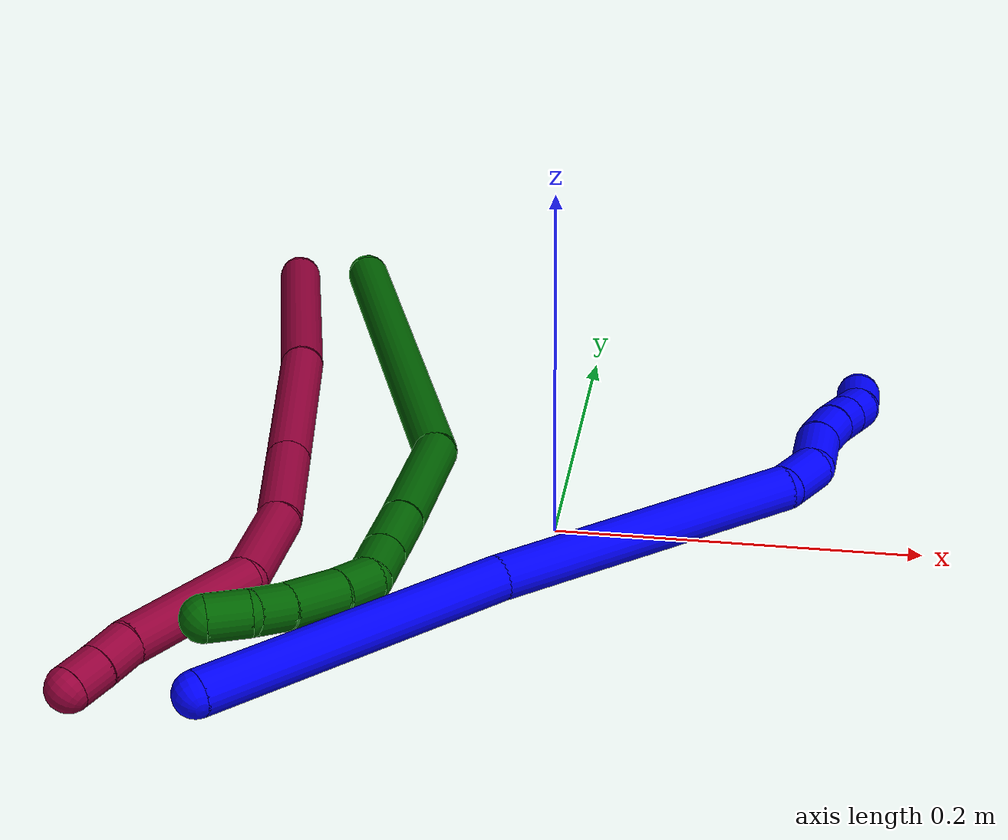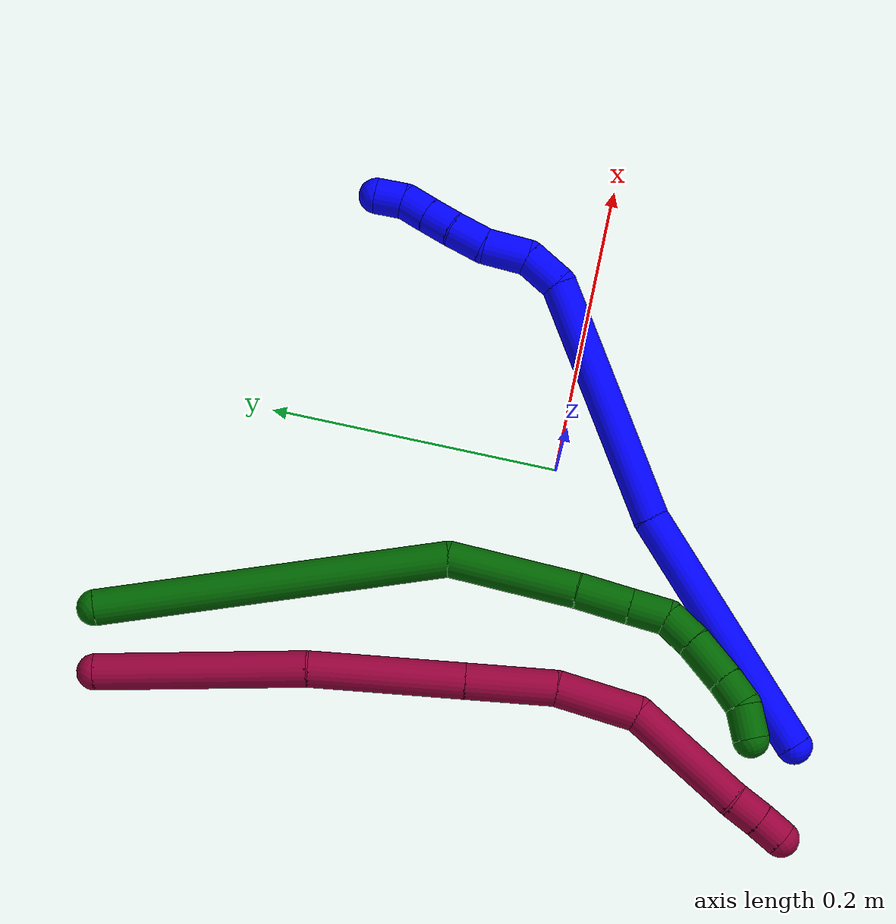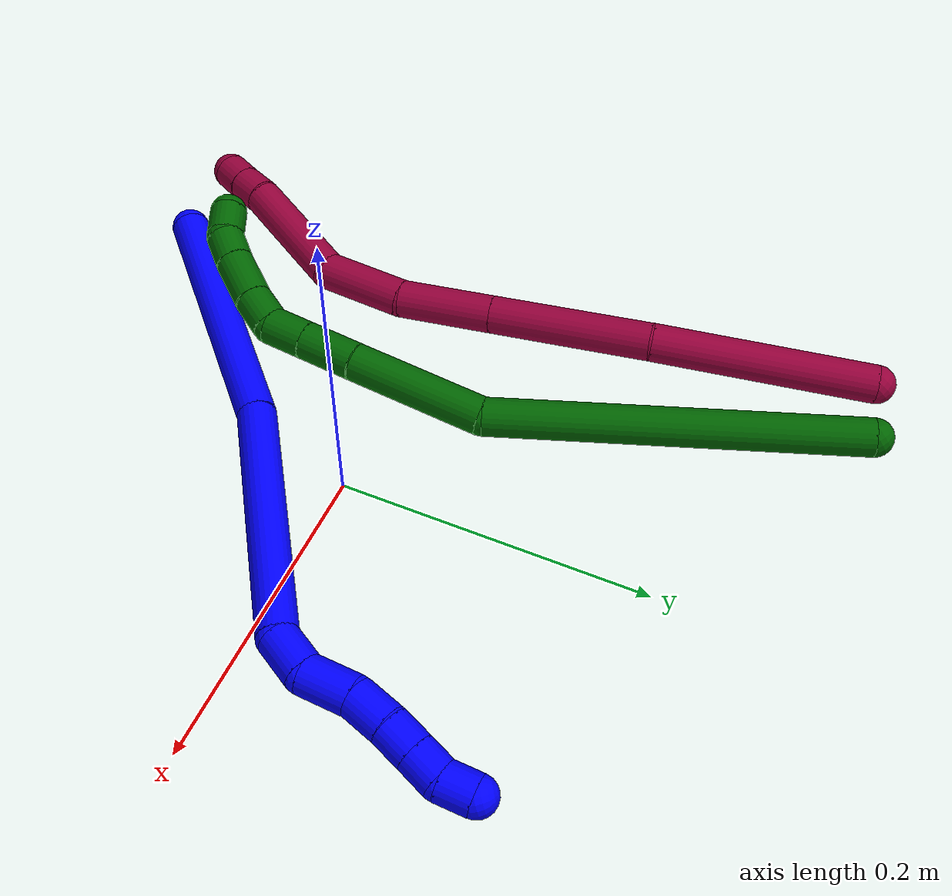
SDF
<sdf version="1.7">
 <world name="default">
  <model name="1">
   <static>0</static>
   <link name="1">
    <collision name="collision-cylinder-e_1_1_4">
     <pose>0.064473 0.060975 0.019854 -1.25601 0.788096 -0.586387</pose>
     <geometry><cylinder><radius>0.0125</radius><length>0.181867</length></cylinder></geometry>
     <surface>
      <friction><ode><mu>1.16</mu><mu2>1.16</mu2><slip1>0</slip1><slip2>0</slip2></ode></friction>
      <contact><ode><kp>1e+06</kp><kd>1</kd><max_vel>0</max_vel><min_depth>0.001</min_depth></ode></contact>
     </surface>
    </collision>
    <visual name="visual-cylinder-e_1_1_4">
     <pose>0.064473 0.060975 0.019854 -1.25601 0.788096 -0.586387</pose>
     <geometry><cylinder><radius>0.0125</radius><length>0.181867</length></cylinder></geometry>
     <material><ambient>0 0 1 1</ambient></material>
    </visual>
    <collision name="collision-cylinder-e_2_4_5">
     <pose>0.197436 0.174737 0.044534 -1.47963 0.91215 -0.841994</pose>
     <geometry><cylinder><radius>0.0125</radius><length>0.173214</length></cylinder></geometry>
     <surface>
      <friction><ode><mu>1.16</mu><mu2>1.16</mu2><slip1>0</slip1><slip2>0</slip2></ode></friction>
      <contact><ode><kp>1e+06</kp><kd>1</kd><max_vel>0</max_vel><min_depth>0.001</min_depth></ode></contact>
     </surface>
    </collision>
    <visual name="visual-cylinder-e_2_4_5">
     <pose>0.197436 0.174737 0.044534 -1.47963 0.91215 -0.841994</pose>
     <geometry><cylinder><radius>0.0125</radius><length>0.173214</length></cylinder></geometry>
     <material><ambient>0 0 1 1</ambient></material>
    </visual>
    <collision name="collision-cylinder-e_3_5_6">
     <pose>0.274226 0.236633 0.056025 -0.939054 0.634003 -0.329877</pose>
     <geometry><cylinder><radius>0.0125</radius><length>0.02802</length></cylinder></geometry>
     <surface>
      <friction><ode><mu>1.16</mu><mu2>1.16</mu2><slip1>0</slip1><slip2>0</slip2></ode></friction>
      <contact><ode><kp>1e+06</kp><kd>1</kd><max_vel>0</max_vel><min_depth>0.001</min_depth></ode></contact>
     </surface>
    </collision>
    <visual name="visual-cylinder-e_3_5_6">
     <pose>0.274226 0.236633 0.056025 -0.939054 0.634003 -0.329877</pose>
     <geometry><cylinder><radius>0.0125</radius><length>0.02802</length></cylinder></geometry>
     <material><ambient>0 0 1 1</ambient></material>
    </visual>
    <collision name="collision-cylinder-e_4_6_7">
     <pose>0.287438 0.253365 0.075383 -0.540887 0.320422 -0.08954</pose>
     <geometry><cylinder><radius>0.0125</radius><length>0.031199</length></cylinder></geometry>
     <surface>
      <friction><ode><mu>1.16</mu><mu2>1.16</mu2><slip1>0</slip1><slip2>0</slip2></ode></friction>
      <contact><ode><kp>1e+06</kp><kd>1</kd><max_vel>0</max_vel><min_depth>0.001</min_depth></ode></contact>
     </surface>
    </collision>
    <visual name="visual-cylinder-e_4_6_7">
     <pose>0.287438 0.253365 0.075383 -0.540887 0.320422 -0.08954</pose>
     <geometry><cylinder><radius>0.0125</radius><length>0.031199</length></cylinder></geometry>
     <material><ambient>0 0 1 1</ambient></material>
    </visual>
    <collision name="collision-cylinder-e_5_7_8">
     <pose>0.297563 0.268978 0.095919 -0.794563 0.435598 -0.185189</pose>
     <geometry><cylinder><radius>0.0125</radius><length>0.0247</length></cylinder></geometry>
     <surface>
      <friction><ode><mu>1.16</mu><mu2>1.16</mu2><slip1>0</slip1><slip2>0</slip2></ode></friction>
      <contact><ode><kp>1e+06</kp><kd>1</kd><max_vel>0</max_vel><min_depth>0.001</min_depth></ode></contact>
     </surface>
    </collision>
    <visual name="visual-cylinder-e_5_7_8">
     <pose>0.297563 0.268978 0.095919 -0.794563 0.435598 -0.185189</pose>
     <geometry><cylinder><radius>0.0125</radius><length>0.0247</length></cylinder></geometry>
     <material><ambient>0 0 1 1</ambient></material>
    </visual>
    <collision name="collision-cylinder-e_6_8_9">
     <pose>0.306645 0.284376 0.10953 -0.909426 0.391168 -0.193109</pose>
     <geometry><cylinder><radius>0.0125</radius><length>0.020309</length></cylinder></geometry>
     <surface>
      <friction><ode><mu>1.16</mu><mu2>1.16</mu2><slip1>0</slip1><slip2>0</slip2></ode></friction>
      <contact><ode><kp>1e+06</kp><kd>1</kd><max_vel>0</max_vel><min_depth>0.001</min_depth></ode></contact>
     </surface>
    </collision>
    <visual name="visual-cylinder-e_6_8_9">
     <pose>0.306645 0.284376 0.10953 -0.909426 0.391168 -0.193109</pose>
     <geometry><cylinder><radius>0.0125</radius><length>0.020309</length></cylinder></geometry>
     <material><ambient>0 0 1 1</ambient></material>
    </visual>
    <collision name="collision-cylinder-e_7_9_10">
     <pose>0.314573 0.299069 0.120898 -0.915164 0.415627 -0.206928</pose>
     <geometry><cylinder><radius>0.0125</radius><length>0.020091</length></cylinder></geometry>
     <surface>
      <friction><ode><mu>1.16</mu><mu2>1.16</mu2><slip1>0</slip1><slip2>0</slip2></ode></friction>
      <contact><ode><kp>1e+06</kp><kd>1</kd><max_vel>0</max_vel><min_depth>0.001</min_depth></ode></contact>
     </surface>
    </collision>
    <visual name="visual-cylinder-e_7_9_10">
     <pose>0.314573 0.299069 0.120898 -0.915164 0.415627 -0.206928</pose>
     <geometry><cylinder><radius>0.0125</radius><length>0.020091</length></cylinder></geometry>
     <material><ambient>0 0 1 1</ambient></material>
    </visual>
    <collision name="collision-cylinder-e_8_10_2">
     <pose>0.320958 0.311724 0.134977 -0.564794 0.228113 -0.066451</pose>
     <geometry><cylinder><radius>0.0125</radius><length>0.020601</length></cylinder></geometry>
     <surface>
      <friction><ode><mu>1.16</mu><mu2>1.16</mu2><slip1>0</slip1><slip2>0</slip2></ode></friction>
      <contact><ode><kp>1e+06</kp><kd>1</kd><max_vel>0</max_vel><min_depth>0.001</min_depth></ode></contact>
     </surface>
    </collision>
    <visual name="visual-cylinder-e_8_10_2">
     <pose>0.320958 0.311724 0.134977 -0.564794 0.228113 -0.066451</pose>
     <geometry><cylinder><radius>0.0125</radius><length>0.020601</length></cylinder></geometry>
     <material><ambient>0 0 1 1</ambient></material>
    </visual>
    <collision name="collision-sphere-2">
     <pose>0.323288 0.317094 0.143452 0 -0 0</pose>
     <geometry><sphere><radius>0.0125</radius></sphere></geometry>
     <surface>
      <friction><ode><mu>1.16</mu><mu2>1.16</mu2><slip1>0</slip1><slip2>0</slip2></ode></friction>
      <contact><ode><kp>1e+06</kp><kd>1</kd><max_vel>0</max_vel><min_depth>0.001</min_depth></ode></contact>
     </surface>
    </collision>
    <visual name="visual-sphere-2">
     <pose>0.323288 0.317094 0.143452 0 -0 0</pose>
     <geometry><sphere><radius>0.0125</radius></sphere></geometry>
     <material><ambient>0 0 1 1</ambient></material>
    </visual>
    <collision name="collision-sphere-10">
     <pose>0.318629 0.306354 0.126501 0 -0 0</pose>
     <geometry><sphere><radius>0.0125</radius></sphere></geometry>
     <surface>
      <friction><ode><mu>1.16</mu><mu2>1.16</mu2><slip1>0</slip1><slip2>0</slip2></ode></friction>
      <contact><ode><kp>1e+06</kp><kd>1</kd><max_vel>0</max_vel><min_depth>0.001</min_depth></ode></contact>
     </surface>
    </collision>
    <visual name="visual-sphere-10">
     <pose>0.318629 0.306354 0.126501 0 -0 0</pose>
     <geometry><sphere><radius>0.0125</radius></sphere></geometry>
     <material><ambient>0 0 1 1</ambient></material>
    </visual>
    <collision name="collision-sphere-9">
     <pose>0.310517 0.291784 0.115295 0 -0 0</pose>
     <geometry><sphere><radius>0.0125</radius></sphere></geometry>
     <surface>
      <friction><ode><mu>1.16</mu><mu2>1.16</mu2><slip1>0</slip1><slip2>0</slip2></ode></friction>
      <contact><ode><kp>1e+06</kp><kd>1</kd><max_vel>0</max_vel><min_depth>0.001</min_depth></ode></contact>
     </surface>
    </collision>
    <visual name="visual-sphere-9">
     <pose>0.310517 0.291784 0.115295 0 -0 0</pose>
     <geometry><sphere><radius>0.0125</radius></sphere></geometry>
     <material><ambient>0 0 1 1</ambient></material>
    </visual>
    <collision name="collision-sphere-4">
     <pose>0.128946 0.12195 0.039708 0 -0 0</pose>
     <geometry><sphere><radius>0.0125</radius></sphere></geometry>
     <surface>
      <friction><ode><mu>1.16</mu><mu2>1.16</mu2><slip1>0</slip1><slip2>0</slip2></ode></friction>
      <contact><ode><kp>1e+06</kp><kd>1</kd><max_vel>0</max_vel><min_depth>0.001</min_depth></ode></contact>
     </surface>
    </collision>
    <visual name="visual-sphere-4">
     <pose>0.128946 0.12195 0.039708 0 -0 0</pose>
     <geometry><sphere><radius>0.0125</radius></sphere></geometry>
     <material><ambient>0 0 1 1</ambient></material>
    </visual>
    <collision name="collision-sphere-1">
     <geometry><sphere><radius>0.0125</radius></sphere></geometry>
     <surface>
      <friction><ode><mu>1.16</mu><mu2>1.16</mu2><slip1>0</slip1><slip2>0</slip2></ode></friction>
      <contact><ode><kp>1e+06</kp><kd>1</kd><max_vel>0</max_vel><min_depth>0.001</min_depth></ode></contact>
     </surface>
    </collision>
    <visual name="visual-sphere-1">
     <geometry><sphere><radius>0.0125</radius></sphere></geometry>
     <material><ambient>0 0 1 1</ambient></material>
    </visual>
    <collision name="collision-sphere-8">
     <pose>0.302774 0.276968 0.103764 0 -0 0</pose>
     <geometry><sphere><radius>0.0125</radius></sphere></geometry>
     <surface>
      <friction><ode><mu>1.16</mu><mu2>1.16</mu2><slip1>0</slip1><slip2>0</slip2></ode></friction>
      <contact><ode><kp>1e+06</kp><kd>1</kd><max_vel>0</max_vel><min_depth>0.001</min_depth></ode></contact>
     </surface>
    </collision>
    <visual name="visual-sphere-8">
     <pose>0.302774 0.276968 0.103764 0 -0 0</pose>
     <geometry><sphere><radius>0.0125</radius></sphere></geometry>
     <material><ambient>0 0 1 1</ambient></material>
    </visual>
    <collision name="collision-sphere-5">
     <pose>0.265927 0.227524 0.049359 0 -0 0</pose>
     <geometry><sphere><radius>0.0125</radius></sphere></geometry>
     <surface>
      <friction><ode><mu>1.16</mu><mu2>1.16</mu2><slip1>0</slip1><slip2>0</slip2></ode></friction>
      <contact><ode><kp>1e+06</kp><kd>1</kd><max_vel>0</max_vel><min_depth>0.001</min_depth></ode></contact>
     </surface>
    </collision>
    <visual name="visual-sphere-5">
     <pose>0.265927 0.227524 0.049359 0 -0 0</pose>
     <geometry><sphere><radius>0.0125</radius></sphere></geometry>
     <material><ambient>0 0 1 1</ambient></material>
    </visual>
    <collision name="collision-sphere-6">
     <pose>0.282525 0.245742 0.062691 0 -0 0</pose>
     <geometry><sphere><radius>0.0125</radius></sphere></geometry>
     <surface>
      <friction><ode><mu>1.16</mu><mu2>1.16</mu2><slip1>0</slip1><slip2>0</slip2></ode></friction>
      <contact><ode><kp>1e+06</kp><kd>1</kd><max_vel>0</max_vel><min_depth>0.001</min_depth></ode></contact>
     </surface>
    </collision>
    <visual name="visual-sphere-6">
     <pose>0.282525 0.245742 0.062691 0 -0 0</pose>
     <geometry><sphere><radius>0.0125</radius></sphere></geometry>
     <material><ambient>0 0 1 1</ambient></material>
    </visual>
    <collision name="collision-sphere-7">
     <pose>0.292352 0.260989 0.088075 0 -0 0</pose>
     <geometry><sphere><radius>0.0125</radius></sphere></geometry>
     <surface>
      <friction><ode><mu>1.16</mu><mu2>1.16</mu2><slip1>0</slip1><slip2>0</slip2></ode></friction>
      <contact><ode><kp>1e+06</kp><kd>1</kd><max_vel>0</max_vel><min_depth>0.001</min_depth></ode></contact>
     </surface>
    </collision>
    <visual name="visual-sphere-7">
     <pose>0.292352 0.260989 0.088075 0 -0 0</pose>
     <geometry><sphere><radius>0.0125</radius></sphere></geometry>
     <material><ambient>0 0 1 1</ambient></material>
    </visual>
    <inertial>
     <pose>0.17817 0.161482 0.050099 0 -0 0</pose>
     <mass>0.5</mass>
     <inertia>
      <ixx>0.000114</ixx>
      <ixy>0</ixy>
      <ixz>0</ixz>
      <iyy>0.00024</iyy>
      <iyz>0</iyz>
      <izz>-0.00132</izz>
     </inertia>
    </inertial>
   </link>
   <pose>-0.15177 -0.19649 0.011555 -1.31333 -0.696046 0.372297</pose>
  </model>
  <model name="6">
   <static>0</static>
   <link name="6">
    <collision name="collision-cylinder-e_1_1_4">
     <pose>-0.029505 -0.064788 0.098695 0.58089 -0.244898 -0.073534</pose>
     <geometry><cylinder><radius>0.0125</radius><length>0.243382</length></cylinder></geometry>
     <surface>
      <friction><ode><mu>1.16</mu><mu2>1.16</mu2><slip1>0</slip1><slip2>0</slip2></ode></friction>
      <contact><ode><kp>1e+06</kp><kd>1</kd><max_vel>0</max_vel><min_depth>0.001</min_depth></ode></contact>
     </surface>
    </collision>
    <visual name="visual-cylinder-e_1_1_4">
     <pose>-0.029505 -0.064788 0.098695 0.58089 -0.244898 -0.073534</pose>
     <geometry><cylinder><radius>0.0125</radius><length>0.243382</length></cylinder></geometry>
     <material><ambient>0 0.392157 0.003922 1</ambient></material>
    </visual>
    <collision name="collision-cylinder-e_2_4_5">
     <pose>-0.066868 -0.166577 0.222397 0.976479 -0.174169 -0.092674</pose>
     <geometry><cylinder><radius>0.0125</radius><length>0.09069</length></cylinder></geometry>
     <surface>
      <friction><ode><mu>1.16</mu><mu2>1.16</mu2><slip1>0</slip1><slip2>0</slip2></ode></friction>
      <contact><ode><kp>1e+06</kp><kd>1</kd><max_vel>0</max_vel><min_depth>0.001</min_depth></ode></contact>
     </surface>
    </collision>
    <visual name="visual-cylinder-e_2_4_5">
     <pose>-0.066868 -0.166577 0.222397 0.976479 -0.174169 -0.092674</pose>
     <geometry><cylinder><radius>0.0125</radius><length>0.09069</length></cylinder></geometry>
     <material><ambient>0 0.392157 0.003922 1</ambient></material>
    </visual>
    <collision name="collision-cylinder-e_3_5_6">
     <pose>-0.076683 -0.219087 0.25738 0.999167 -0.105774 -0.057765</pose>
     <geometry><cylinder><radius>0.0125</radius><length>0.037089</length></cylinder></geometry>
     <surface>
      <friction><ode><mu>1.16</mu><mu2>1.16</mu2><slip1>0</slip1><slip2>0</slip2></ode></friction>
      <contact><ode><kp>1e+06</kp><kd>1</kd><max_vel>0</max_vel><min_depth>0.001</min_depth></ode></contact>
     </surface>
    </collision>
    <visual name="visual-cylinder-e_3_5_6">
     <pose>-0.076683 -0.219087 0.25738 0.999167 -0.105774 -0.057765</pose>
     <geometry><cylinder><radius>0.0125</radius><length>0.037089</length></cylinder></geometry>
     <material><ambient>0 0.392157 0.003922 1</ambient></material>
    </visual>
    <collision name="collision-cylinder-e_4_6_7">
     <pose>-0.080212 -0.245768 0.274616 0.994567 -0.117359 -0.063752</pose>
     <geometry><cylinder><radius>0.0125</radius><length>0.026831</length></cylinder></geometry>
     <surface>
      <friction><ode><mu>1.16</mu><mu2>1.16</mu2><slip1>0</slip1><slip2>0</slip2></ode></friction>
      <contact><ode><kp>1e+06</kp><kd>1</kd><max_vel>0</max_vel><min_depth>0.001</min_depth></ode></contact>
     </surface>
    </collision>
    <visual name="visual-cylinder-e_4_6_7">
     <pose>-0.080212 -0.245768 0.274616 0.994567 -0.117359 -0.063752</pose>
     <geometry><cylinder><radius>0.0125</radius><length>0.026831</length></cylinder></geometry>
     <material><ambient>0 0.392157 0.003922 1</ambient></material>
    </visual>
    <collision name="collision-cylinder-e_5_7_8">
     <pose>-0.082044 -0.268963 0.282815 1.4928 -0.021677 -0.020049</pose>
     <geometry><cylinder><radius>0.0125</radius><length>0.024124</length></cylinder></geometry>
     <surface>
      <friction><ode><mu>1.16</mu><mu2>1.16</mu2><slip1>0</slip1><slip2>0</slip2></ode></friction>
      <contact><ode><kp>1e+06</kp><kd>1</kd><max_vel>0</max_vel><min_depth>0.001</min_depth></ode></contact>
     </surface>
    </collision>
    <visual name="visual-cylinder-e_5_7_8">
     <pose>-0.082044 -0.268963 0.282815 1.4928 -0.021677 -0.020049</pose>
     <geometry><cylinder><radius>0.0125</radius><length>0.024124</length></cylinder></geometry>
     <material><ambient>0 0.392157 0.003922 1</ambient></material>
    </visual>
    <collision name="collision-cylinder-e_6_8_9">
     <pose>-0.082132 -0.297713 0.283106 1.60955 0.010402 0.010813</pose>
     <geometry><cylinder><radius>0.0125</radius><length>0.033481</length></cylinder></geometry>
     <surface>
      <friction><ode><mu>1.16</mu><mu2>1.16</mu2><slip1>0</slip1><slip2>0</slip2></ode></friction>
      <contact><ode><kp>1e+06</kp><kd>1</kd><max_vel>0</max_vel><min_depth>0.001</min_depth></ode></contact>
     </surface>
    </collision>
    <visual name="visual-cylinder-e_6_8_9">
     <pose>-0.082132 -0.297713 0.283106 1.60955 0.010402 0.010813</pose>
     <geometry><cylinder><radius>0.0125</radius><length>0.033481</length></cylinder></geometry>
     <material><ambient>0 0.392157 0.003922 1</ambient></material>
    </visual>
    <collision name="collision-cylinder-e_7_9_10">
     <pose>-0.082174 -0.324956 0.28109 1.7001 -0.020376 -0.023197</pose>
     <geometry><cylinder><radius>0.0125</radius><length>0.021213</length></cylinder></geometry>
     <surface>
      <friction><ode><mu>1.16</mu><mu2>1.16</mu2><slip1>0</slip1><slip2>0</slip2></ode></friction>
      <contact><ode><kp>1e+06</kp><kd>1</kd><max_vel>0</max_vel><min_depth>0.001</min_depth></ode></contact>
     </surface>
    </collision>
    <visual name="visual-cylinder-e_7_9_10">
     <pose>-0.082174 -0.324956 0.28109 1.7001 -0.020376 -0.023197</pose>
     <geometry><cylinder><radius>0.0125</radius><length>0.021213</length></cylinder></geometry>
     <material><ambient>0 0.392157 0.003922 1</ambient></material>
    </visual>
    <collision name="collision-cylinder-e_8_10_2">
     <pose>-0.079251 -0.34558 0.274991 2.00862 0.274151 0.427145</pose>
     <geometry><cylinder><radius>0.0125</radius><length>0.023189</length></cylinder></geometry>
     <surface>
      <friction><ode><mu>1.16</mu><mu2>1.16</mu2><slip1>0</slip1><slip2>0</slip2></ode></friction>
      <contact><ode><kp>1e+06</kp><kd>1</kd><max_vel>0</max_vel><min_depth>0.001</min_depth></ode></contact>
     </surface>
    </collision>
    <visual name="visual-cylinder-e_8_10_2">
     <pose>-0.079251 -0.34558 0.274991 2.00862 0.274151 0.427145</pose>
     <geometry><cylinder><radius>0.0125</radius><length>0.023189</length></cylinder></geometry>
     <material><ambient>0 0.392157 0.003922 1</ambient></material>
    </visual>
    <collision name="collision-sphere-2">
     <pose>-0.076112 -0.355689 0.270259 0 -0 0</pose>
     <geometry><sphere><radius>0.0125</radius></sphere></geometry>
     <surface>
      <friction><ode><mu>1.16</mu><mu2>1.16</mu2><slip1>0</slip1><slip2>0</slip2></ode></friction>
      <contact><ode><kp>1e+06</kp><kd>1</kd><max_vel>0</max_vel><min_depth>0.001</min_depth></ode></contact>
     </surface>
    </collision>
    <visual name="visual-sphere-2">
     <pose>-0.076112 -0.355689 0.270259 0 -0 0</pose>
     <geometry><sphere><radius>0.0125</radius></sphere></geometry>
     <material><ambient>0 0.392157 0.003922 1</ambient></material>
    </visual>
    <collision name="collision-sphere-10">
     <pose>-0.08239 -0.335471 0.279723 0 -0 0</pose>
     <geometry><sphere><radius>0.0125</radius></sphere></geometry>
     <surface>
      <friction><ode><mu>1.16</mu><mu2>1.16</mu2><slip1>0</slip1><slip2>0</slip2></ode></friction>
      <contact><ode><kp>1e+06</kp><kd>1</kd><max_vel>0</max_vel><min_depth>0.001</min_depth></ode></contact>
     </surface>
    </collision>
    <visual name="visual-sphere-10">
     <pose>-0.08239 -0.335471 0.279723 0 -0 0</pose>
     <geometry><sphere><radius>0.0125</radius></sphere></geometry>
     <material><ambient>0 0.392157 0.003922 1</ambient></material>
    </visual>
    <collision name="collision-sphere-9">
     <pose>-0.081958 -0.31444 0.282458 0 -0 0</pose>
     <geometry><sphere><radius>0.0125</radius></sphere></geometry>
     <surface>
      <friction><ode><mu>1.16</mu><mu2>1.16</mu2><slip1>0</slip1><slip2>0</slip2></ode></friction>
      <contact><ode><kp>1e+06</kp><kd>1</kd><max_vel>0</max_vel><min_depth>0.001</min_depth></ode></contact>
     </surface>
    </collision>
    <visual name="visual-sphere-9">
     <pose>-0.081958 -0.31444 0.282458 0 -0 0</pose>
     <geometry><sphere><radius>0.0125</radius></sphere></geometry>
     <material><ambient>0 0.392157 0.003922 1</ambient></material>
    </visual>
    <collision name="collision-sphere-4">
     <pose>-0.05901 -0.129575 0.19739 0 -0 0</pose>
     <geometry><sphere><radius>0.0125</radius></sphere></geometry>
     <surface>
      <friction><ode><mu>1.16</mu><mu2>1.16</mu2><slip1>0</slip1><slip2>0</slip2></ode></friction>
      <contact><ode><kp>1e+06</kp><kd>1</kd><max_vel>0</max_vel><min_depth>0.001</min_depth></ode></contact>
     </surface>
    </collision>
    <visual name="visual-sphere-4">
     <pose>-0.05901 -0.129575 0.19739 0 -0 0</pose>
     <geometry><sphere><radius>0.0125</radius></sphere></geometry>
     <material><ambient>0 0.392157 0.003922 1</ambient></material>
    </visual>
    <collision name="collision-sphere-1">
     <geometry><sphere><radius>0.0125</radius></sphere></geometry>
     <surface>
      <friction><ode><mu>1.16</mu><mu2>1.16</mu2><slip1>0</slip1><slip2>0</slip2></ode></friction>
      <contact><ode><kp>1e+06</kp><kd>1</kd><max_vel>0</max_vel><min_depth>0.001</min_depth></ode></contact>
     </surface>
    </collision>
    <visual name="visual-sphere-1">
     <geometry><sphere><radius>0.0125</radius></sphere></geometry>
     <material><ambient>0 0.392157 0.003922 1</ambient></material>
    </visual>
    <collision name="collision-sphere-8">
     <pose>-0.082306 -0.280986 0.283755 0 -0 0</pose>
     <geometry><sphere><radius>0.0125</radius></sphere></geometry>
     <surface>
      <friction><ode><mu>1.16</mu><mu2>1.16</mu2><slip1>0</slip1><slip2>0</slip2></ode></friction>
      <contact><ode><kp>1e+06</kp><kd>1</kd><max_vel>0</max_vel><min_depth>0.001</min_depth></ode></contact>
     </surface>
    </collision>
    <visual name="visual-sphere-8">
     <pose>-0.082306 -0.280986 0.283755 0 -0 0</pose>
     <geometry><sphere><radius>0.0125</radius></sphere></geometry>
     <material><ambient>0 0.392157 0.003922 1</ambient></material>
    </visual>
    <collision name="collision-sphere-5">
     <pose>-0.074726 -0.203578 0.247403 0 -0 0</pose>
     <geometry><sphere><radius>0.0125</radius></sphere></geometry>
     <surface>
      <friction><ode><mu>1.16</mu><mu2>1.16</mu2><slip1>0</slip1><slip2>0</slip2></ode></friction>
      <contact><ode><kp>1e+06</kp><kd>1</kd><max_vel>0</max_vel><min_depth>0.001</min_depth></ode></contact>
     </surface>
    </collision>
    <visual name="visual-sphere-5">
     <pose>-0.074726 -0.203578 0.247403 0 -0 0</pose>
     <geometry><sphere><radius>0.0125</radius></sphere></geometry>
     <material><ambient>0 0.392157 0.003922 1</ambient></material>
    </visual>
    <collision name="collision-sphere-6">
     <pose>-0.078641 -0.234596 0.267357 0 -0 0</pose>
     <geometry><sphere><radius>0.0125</radius></sphere></geometry>
     <surface>
      <friction><ode><mu>1.16</mu><mu2>1.16</mu2><slip1>0</slip1><slip2>0</slip2></ode></friction>
      <contact><ode><kp>1e+06</kp><kd>1</kd><max_vel>0</max_vel><min_depth>0.001</min_depth></ode></contact>
     </surface>
    </collision>
    <visual name="visual-sphere-6">
     <pose>-0.078641 -0.234596 0.267357 0 -0 0</pose>
     <geometry><sphere><radius>0.0125</radius></sphere></geometry>
     <material><ambient>0 0.392157 0.003922 1</ambient></material>
    </visual>
    <collision name="collision-sphere-7">
     <pose>-0.081783 -0.25694 0.281876 0 -0 0</pose>
     <geometry><sphere><radius>0.0125</radius></sphere></geometry>
     <surface>
      <friction><ode><mu>1.16</mu><mu2>1.16</mu2><slip1>0</slip1><slip2>0</slip2></ode></friction>
      <contact><ode><kp>1e+06</kp><kd>1</kd><max_vel>0</max_vel><min_depth>0.001</min_depth></ode></contact>
     </surface>
    </collision>
    <visual name="visual-sphere-7">
     <pose>-0.081783 -0.25694 0.281876 0 -0 0</pose>
     <geometry><sphere><radius>0.0125</radius></sphere></geometry>
     <material><ambient>0 0.392157 0.003922 1</ambient></material>
    </visual>
    <inertial>
     <pose>-0.053103 -0.153916 0.17949 0 -0 0</pose>
     <mass>0.5</mass>
     <inertia>
      <ixx>0.001156</ixx>
      <ixy>0</ixy>
      <ixz>0</ixz>
      <iyy>0.000943</iyy>
      <iyz>0</iyz>
      <izz>0.001042</izz>
     </inertia>
    </inertial>
   </link>
   <pose>-0.159517 0.287848 0.011494 -2.75017 1.15332 2.84902</pose>
  </model>
  <model name="8">
   <static>0</static>
   <link name="8">
    <collision name="collision-cylinder-e_1_1_4">
     <pose>-0.020155 -0.058814 0.037318 1.00538 -0.28166 -0.155575</pose>
     <geometry><cylinder><radius>0.0125</radius><length>0.145023</length></cylinder></geometry>
     <surface>
      <friction><ode><mu>1.16</mu><mu2>1.16</mu2><slip1>0</slip1><slip2>0</slip2></ode></friction>
      <contact><ode><kp>1e+06</kp><kd>1</kd><max_vel>0</max_vel><min_depth>0.001</min_depth></ode></contact>
     </surface>
    </collision>
    <visual name="visual-cylinder-e_1_1_4">
     <pose>-0.020155 -0.058814 0.037318 1.00538 -0.28166 -0.155575</pose>
     <geometry><cylinder><radius>0.0125</radius><length>0.145023</length></cylinder></geometry>
     <material><ambient>0.584314 0 0.227451 1</ambient></material>
    </visual>
    <collision name="collision-cylinder-e_2_4_5">
     <pose>-0.048027 -0.162892 0.10162 1.03324 -0.145427 -0.082713</pose>
     <geometry><cylinder><radius>0.0125</radius><length>0.106519</length></cylinder></geometry>
     <surface>
      <friction><ode><mu>1.16</mu><mu2>1.16</mu2><slip1>0</slip1><slip2>0</slip2></ode></friction>
      <contact><ode><kp>1e+06</kp><kd>1</kd><max_vel>0</max_vel><min_depth>0.001</min_depth></ode></contact>
     </surface>
    </collision>
    <visual name="visual-cylinder-e_2_4_5">
     <pose>-0.048027 -0.162892 0.10162 1.03324 -0.145427 -0.082713</pose>
     <geometry><cylinder><radius>0.0125</radius><length>0.106519</length></cylinder></geometry>
     <material><ambient>0.584314 0 0.227451 1</ambient></material>
    </visual>
    <collision name="collision-cylinder-e_3_5_6">
     <pose>-0.060298 -0.2348 0.144446 1.03433 -0.145816 -0.08304</pose>
     <geometry><cylinder><radius>0.0125</radius><length>0.06266</length></cylinder></geometry>
     <surface>
      <friction><ode><mu>1.16</mu><mu2>1.16</mu2><slip1>0</slip1><slip2>0</slip2></ode></friction>
      <contact><ode><kp>1e+06</kp><kd>1</kd><max_vel>0</max_vel><min_depth>0.001</min_depth></ode></contact>
     </surface>
    </collision>
    <visual name="visual-cylinder-e_3_5_6">
     <pose>-0.060298 -0.2348 0.144446 1.03433 -0.145816 -0.08304</pose>
     <geometry><cylinder><radius>0.0125</radius><length>0.06266</length></cylinder></geometry>
     <material><ambient>0.584314 0 0.227451 1</ambient></material>
    </visual>
    <collision name="collision-cylinder-e_4_6_7">
     <pose>-0.066468 -0.288801 0.169627 1.24186 -0.055931 -0.040013</pose>
     <geometry><cylinder><radius>0.0125</radius><length>0.057905</length></cylinder></geometry>
     <surface>
      <friction><ode><mu>1.16</mu><mu2>1.16</mu2><slip1>0</slip1><slip2>0</slip2></ode></friction>
      <contact><ode><kp>1e+06</kp><kd>1</kd><max_vel>0</max_vel><min_depth>0.001</min_depth></ode></contact>
     </surface>
    </collision>
    <visual name="visual-cylinder-e_4_6_7">
     <pose>-0.066468 -0.288801 0.169627 1.24186 -0.055931 -0.040013</pose>
     <geometry><cylinder><radius>0.0125</radius><length>0.057905</length></cylinder></geometry>
     <material><ambient>0.584314 0 0.227451 1</ambient></material>
    </visual>
    <collision name="collision-cylinder-e_5_7_8">
     <pose>-0.064362 -0.358911 0.174962 1.66416 0.086534 0.095003</pose>
     <geometry><cylinder><radius>0.0125</radius><length>0.086202</length></cylinder></geometry>
     <surface>
      <friction><ode><mu>1.16</mu><mu2>1.16</mu2><slip1>0</slip1><slip2>0</slip2></ode></friction>
      <contact><ode><kp>1e+06</kp><kd>1</kd><max_vel>0</max_vel><min_depth>0.001</min_depth></ode></contact>
     </surface>
    </collision>
    <visual name="visual-cylinder-e_5_7_8">
     <pose>-0.064362 -0.358911 0.174962 1.66416 0.086534 0.095003</pose>
     <geometry><cylinder><radius>0.0125</radius><length>0.086202</length></cylinder></geometry>
     <material><ambient>0.584314 0 0.227451 1</ambient></material>
    </visual>
    <collision name="collision-cylinder-e_6_8_9">
     <pose>-0.058831 -0.41227 0.171395 1.52969 0.168467 0.161711</pose>
     <geometry><cylinder><radius>0.0125</radius><length>0.021535</length></cylinder></geometry>
     <surface>
      <friction><ode><mu>1.16</mu><mu2>1.16</mu2><slip1>0</slip1><slip2>0</slip2></ode></friction>
      <contact><ode><kp>1e+06</kp><kd>1</kd><max_vel>0</max_vel><min_depth>0.001</min_depth></ode></contact>
     </surface>
    </collision>
    <visual name="visual-cylinder-e_6_8_9">
     <pose>-0.058831 -0.41227 0.171395 1.52969 0.168467 0.161711</pose>
     <geometry><cylinder><radius>0.0125</radius><length>0.021535</length></cylinder></geometry>
     <material><ambient>0.584314 0 0.227451 1</ambient></material>
    </visual>
    <collision name="collision-cylinder-e_7_9_2">
     <pose>-0.055115 -0.432771 0.171829 1.57099 0.190798 0.190835</pose>
     <geometry><cylinder><radius>0.0125</radius><length>0.020155</length></cylinder></geometry>
     <surface>
      <friction><ode><mu>1.16</mu><mu2>1.16</mu2><slip1>0</slip1><slip2>0</slip2></ode></friction>
      <contact><ode><kp>1e+06</kp><kd>1</kd><max_vel>0</max_vel><min_depth>0.001</min_depth></ode></contact>
     </surface>
    </collision>
    <visual name="visual-cylinder-e_7_9_2">
     <pose>-0.055115 -0.432771 0.171829 1.57099 0.190798 0.190835</pose>
     <geometry><cylinder><radius>0.0125</radius><length>0.020155</length></cylinder></geometry>
     <material><ambient>0.584314 0 0.227451 1</ambient></material>
    </visual>
    <collision name="collision-sphere-2">
     <pose>-0.053204 -0.442666 0.171827 0 -0 0</pose>
     <geometry><sphere><radius>0.0125</radius></sphere></geometry>
     <surface>
      <friction><ode><mu>1.16</mu><mu2>1.16</mu2><slip1>0</slip1><slip2>0</slip2></ode></friction>
      <contact><ode><kp>1e+06</kp><kd>1</kd><max_vel>0</max_vel><min_depth>0.001</min_depth></ode></contact>
     </surface>
    </collision>
    <visual name="visual-sphere-2">
     <pose>-0.053204 -0.442666 0.171827 0 -0 0</pose>
     <geometry><sphere><radius>0.0125</radius></sphere></geometry>
     <material><ambient>0.584314 0 0.227451 1</ambient></material>
    </visual>
    <collision name="collision-sphere-9">
     <pose>-0.057026 -0.422876 0.171831 0 -0 0</pose>
     <geometry><sphere><radius>0.0125</radius></sphere></geometry>
     <surface>
      <friction><ode><mu>1.16</mu><mu2>1.16</mu2><slip1>0</slip1><slip2>0</slip2></ode></friction>
      <contact><ode><kp>1e+06</kp><kd>1</kd><max_vel>0</max_vel><min_depth>0.001</min_depth></ode></contact>
     </surface>
    </collision>
    <visual name="visual-sphere-9">
     <pose>-0.057026 -0.422876 0.171831 0 -0 0</pose>
     <geometry><sphere><radius>0.0125</radius></sphere></geometry>
     <material><ambient>0.584314 0 0.227451 1</ambient></material>
    </visual>
    <collision name="collision-sphere-4">
     <pose>-0.040309 -0.117627 0.074637 0 -0 0</pose>
     <geometry><sphere><radius>0.0125</radius></sphere></geometry>
     <surface>
      <friction><ode><mu>1.16</mu><mu2>1.16</mu2><slip1>0</slip1><slip2>0</slip2></ode></friction>
      <contact><ode><kp>1e+06</kp><kd>1</kd><max_vel>0</max_vel><min_depth>0.001</min_depth></ode></contact>
     </surface>
    </collision>
    <visual name="visual-sphere-4">
     <pose>-0.040309 -0.117627 0.074637 0 -0 0</pose>
     <geometry><sphere><radius>0.0125</radius></sphere></geometry>
     <material><ambient>0.584314 0 0.227451 1</ambient></material>
    </visual>
    <collision name="collision-sphere-1">
     <geometry><sphere><radius>0.0125</radius></sphere></geometry>
     <surface>
      <friction><ode><mu>1.16</mu><mu2>1.16</mu2><slip1>0</slip1><slip2>0</slip2></ode></friction>
      <contact><ode><kp>1e+06</kp><kd>1</kd><max_vel>0</max_vel><min_depth>0.001</min_depth></ode></contact>
     </surface>
    </collision>
    <visual name="visual-sphere-1">
     <geometry><sphere><radius>0.0125</radius></sphere></geometry>
     <material><ambient>0.584314 0 0.227451 1</ambient></material>
    </visual>
    <collision name="collision-sphere-8">
     <pose>-0.060637 -0.401664 0.170959 0 -0 0</pose>
     <geometry><sphere><radius>0.0125</radius></sphere></geometry>
     <surface>
      <friction><ode><mu>1.16</mu><mu2>1.16</mu2><slip1>0</slip1><slip2>0</slip2></ode></friction>
      <contact><ode><kp>1e+06</kp><kd>1</kd><max_vel>0</max_vel><min_depth>0.001</min_depth></ode></contact>
     </surface>
    </collision>
    <visual name="visual-sphere-8">
     <pose>-0.060637 -0.401664 0.170959 0 -0 0</pose>
     <geometry><sphere><radius>0.0125</radius></sphere></geometry>
     <material><ambient>0.584314 0 0.227451 1</ambient></material>
    </visual>
    <collision name="collision-sphere-5">
     <pose>-0.055745 -0.208157 0.128603 0 -0 0</pose>
     <geometry><sphere><radius>0.0125</radius></sphere></geometry>
     <surface>
      <friction><ode><mu>1.16</mu><mu2>1.16</mu2><slip1>0</slip1><slip2>0</slip2></ode></friction>
      <contact><ode><kp>1e+06</kp><kd>1</kd><max_vel>0</max_vel><min_depth>0.001</min_depth></ode></contact>
     </surface>
    </collision>
    <visual name="visual-sphere-5">
     <pose>-0.055745 -0.208157 0.128603 0 -0 0</pose>
     <geometry><sphere><radius>0.0125</radius></sphere></geometry>
     <material><ambient>0.584314 0 0.227451 1</ambient></material>
    </visual>
    <collision name="collision-sphere-6">
     <pose>-0.06485 -0.261443 0.160289 0 -0 0</pose>
     <geometry><sphere><radius>0.0125</radius></sphere></geometry>
     <surface>
      <friction><ode><mu>1.16</mu><mu2>1.16</mu2><slip1>0</slip1><slip2>0</slip2></ode></friction>
      <contact><ode><kp>1e+06</kp><kd>1</kd><max_vel>0</max_vel><min_depth>0.001</min_depth></ode></contact>
     </surface>
    </collision>
    <visual name="visual-sphere-6">
     <pose>-0.06485 -0.261443 0.160289 0 -0 0</pose>
     <geometry><sphere><radius>0.0125</radius></sphere></geometry>
     <material><ambient>0.584314 0 0.227451 1</ambient></material>
    </visual>
    <collision name="collision-sphere-7">
     <pose>-0.068087 -0.316158 0.178965 0 -0 0</pose>
     <geometry><sphere><radius>0.0125</radius></sphere></geometry>
     <surface>
      <friction><ode><mu>1.16</mu><mu2>1.16</mu2><slip1>0</slip1><slip2>0</slip2></ode></friction>
      <contact><ode><kp>1e+06</kp><kd>1</kd><max_vel>0</max_vel><min_depth>0.001</min_depth></ode></contact>
     </surface>
    </collision>
    <visual name="visual-sphere-7">
     <pose>-0.068087 -0.316158 0.178965 0 -0 0</pose>
     <geometry><sphere><radius>0.0125</radius></sphere></geometry>
     <material><ambient>0.584314 0 0.227451 1</ambient></material>
    </visual>
    <inertial>
     <pose>-0.047184 -0.211712 0.114692 0 -0 0</pose>
     <mass>0.5</mass>
     <inertia>
      <ixx>0.000402</ixx>
      <ixy>0</ixy>
      <ixz>0</ixz>
      <iyy>0.000136</iyy>
      <iyz>0</iyz>
      <izz>0.000496</izz>
     </inertia>
    </inertial>
   </link>
   <pose>-0.202158 0.277684 0.012309 -2.98139 1.07051 2.87776</pose>
  </model>
 </world>
</sdf>
